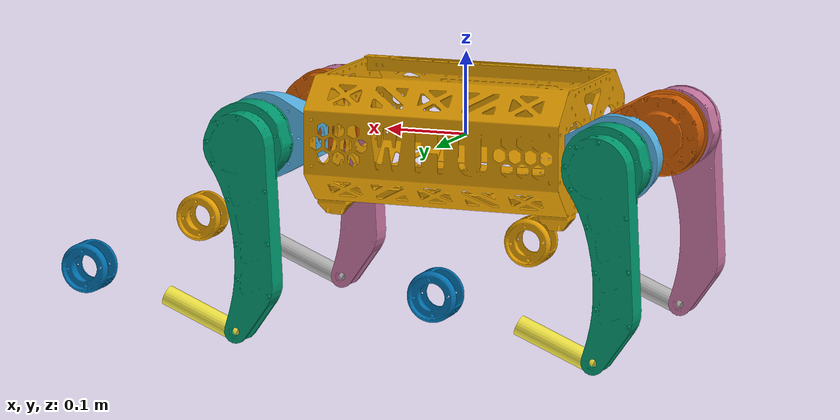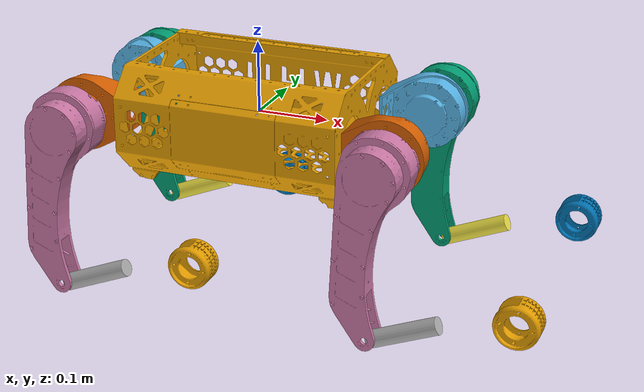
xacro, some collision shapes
<?xml version="1.0"?>
<robot name="Imgo2" xmlns:xacro="http://www.ros.org/wiki/xacro">

    <xacro:arg name="transmission" default="false"/>
    <xacro:arg name="gazebo" default="false"/>
    <xacro:arg name="imu" default="false"/>

    <!-- 内核：物理参数唯一准绳 -->
    <!-- 网格前缀：纯 URDF 用相对路径 ../meshes/（相对 urdf/ 目录）；Gazebo 组装改用
         package://imgo2_description/meshes/ —— Gazebo 经 ament 解析，这样即使 spawn 时
         只把 URDF 文本发过去（-topic）也能找到网格，不依赖文件所在目录。 -->
    <xacro:if value="$(arg gazebo)">
        <xacro:property name="mesh_prefix" value="package://imgo2_description/meshes/"/>
    </xacro:if>
    <xacro:unless value="$(arg gazebo)">
        <xacro:property name="mesh_prefix" value="../meshes/"/>
    </xacro:unless>

    <xacro:include filename="core.xacro"/>

    <xacro:if value="$(arg transmission)">
        <xacro:include filename="transmission.xacro"/>
        <xacro:leg_transmission prefix="FL"/>
        <xacro:leg_transmission prefix="FR"/>
        <xacro:leg_transmission prefix="RL"/>
        <xacro:leg_transmission prefix="RR"/>
    </xacro:if>

    <xacro:if value="$(arg gazebo)">
        <xacro:include filename="gazebo.xacro"/>
    </xacro:if>

    <xacro:if value="$(arg imu)">
        <xacro:include filename="imu.xacro"/>
        <xacro:IMU connected_to="base" imu_name="base_imu" xyz="0 0 0" rpy="0 0 0"/>
    </xacro:if>

</robot>

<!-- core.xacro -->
<robot xmlns:xacro="http://www.ros.org/wiki/xacro">
<link name="base">
        <inertial>
            <origin rpy="0 0 0" xyz="-0.00002223 -0.00136579 0.00287896"/>
            <mass value="5.53394020"/>
            <inertia ixx="0.03866860" ixy="0.00001502" ixz="0.00000229"
                    iyy="0.10411461" iyz="-0.00009602"
                    izz="0.12554111"/>
        </inertial>
        <visual>
            <origin rpy="0 0 0" xyz="0 0 0.0"/>
            <geometry>
                <mesh filename="${mesh_prefix}base.STL"/>
            </geometry>
        </visual>
        <collision>
            <origin rpy="0 0 0" xyz="0 0 0"/>
            <geometry>
                <box size="0.315 0.243 0.147"/>
            </geometry>
        </collision>
        <collision>
            <origin rpy="0 0 0" xyz="0.136 0.07 -0.08325"/>
            <geometry>
                <box size="0.018 0.012 0.018"/>
            </geometry>
        </collision>
        <collision>
            <origin rpy="0 0 0" xyz="0.136 -0.07 -0.08325"/>
            <geometry>
                <box size="0.018 0.012 0.018"/>
            </geometry>
        </collision>
        <collision>
            <origin rpy="0 0 0" xyz="-0.136 0.07 -0.08325"/>
            <geometry>
                <box size="0.018 0.012 0.018"/>
            </geometry>
        </collision>
        <collision>
            <origin rpy="0 0 0" xyz="-0.136 -0.07 -0.08325"/>
            <geometry>
                <box size="0.018 0.012 0.018"/>
            </geometry>
        </collision>
    </link>
    <!-- FL FR RL RR -->
    <!--!!!!!!!!!!!! Front Left Leg !!!!!!!!!!!!!!!!!!!!!!!!!!!!!!!!!!!!-->
    <link name="FL_HIP">
        <inertial>
            <origin xyz="0.05776150 0.01631658 0.00001927"/>
            <mass value="0.66982842"/>
            <inertia ixx="0.00047165" ixy="-0.00002152" ixz="-0.00000604"
                    iyy="0.00094023" iyz="0.00000025"
                    izz="0.00063679"/>
        </inertial>
        <visual>
            <geometry>
                <mesh filename="${mesh_prefix}FL_hip.STL" scale="1 1 1"/>
            </geometry>
        </visual>
        <collision>
            <origin rpy="1.5707963267948966 0.0 0.0" xyz="0.063 0.013 0.0"/>
            <geometry>
                <cylinder length="0.041" radius="0.048"/>
            </geometry>
        </collision>
    </link>

    <joint name="FL_hip_joint" type="revolute">
        <origin xyz="0.1575 0.067 0.00025"/>
        <parent link="base"/>
        <child link="FL_HIP"/>
        <axis xyz="1 0 0"/>
        <limit lower="-0.523" upper="0.523" effort="23.7" velocity="30.1"/>
    </joint>

    <link name="FL_THIGH">
        <inertial>
            <origin rpy="0.0 0.0 0.0" xyz="-0.00429543 0.04392351 -0.03236426"/>
            <mass value="0.96995719"/>
            <inertia ixx="0.00506421" ixy="0.00008162" ixz="-0.00034748"
                    iyy="0.00527087" iyz="0.00062882"
                    izz="0.00088197"/>
        </inertial>
        <visual>
            <geometry>
                <mesh filename="${mesh_prefix}L_thigh.STL"/>
            </geometry>
        </visual>
        <collision>
            <origin rpy="1.5707963267948966 0.0 0.0" xyz="0.0 0.0235 0.0"/>
            <geometry>
                <cylinder length="0.046" radius="0.048"/>
            </geometry>
        </collision>
        <collision>
            <origin rpy="0.0 0.137 0.0" xyz="-0.012 0.0637 -0.08"/>
            <geometry>
                <box size="0.06 0.032 0.22"/>
            </geometry>
        </collision>
    </link>
    <joint name="FL_thigh_joint" type="revolute">
        <origin xyz="0.063 0.0346 0"/>
        <parent link="FL_HIP"/>
        <child link="FL_THIGH"/>
        <axis xyz="0 1 0"/>
        <limit lower="-0.9" upper="2.87" effort="23.7" velocity="30.1"/>
    </joint>

    <link name="FL_SHANK">
        <inertial>
            <origin rpy="0.0 0.0 0.0" xyz="0.00291507 0.00773582 -0.08768836"/>
            <mass value="0.09561741"/>
            <inertia ixx="0.00054414" ixy="0.00000025" ixz="0.00000058"
                    iyy="0.00055144" iyz="0.00000263"
                    izz="0.00001064"/>
        </inertial>
        <visual>
            <geometry>
                <mesh filename="${mesh_prefix}L_shank.STL"/>
            </geometry>
        </visual>
        <collision>
            <origin rpy="0.0 -0.1 0.0" xyz="0.0 0.008 -0.05"/>
            <geometry>
                <cylinder length="0.1" radius="0.012"/>
            </geometry>
        </collision>
        <collision>
            <origin rpy="0.0 0.1 0.0" xyz="0.005 0.008 -0.14"/>
            <geometry>
                <cylinder length="0.08" radius="0.012"/>
            </geometry>
        </collision>
    </link>

    <joint name="FL_shank_joint" type="revolute">
        <origin xyz="0 0.0557 -0.22"/>
        <parent link="FL_THIGH"/>
        <child link="FL_SHANK"/>
        <axis xyz="0 1 0"/>
        <limit lower="-3.0" upper="-0.733" effort="23.7" velocity="30.1"/>
    </joint>

    <link name="FL_FOOT">
        <inertial>
            <origin rpy="0.0 0.0 0.0" xyz="-0.00797137 0.00353495 -0.02130484"/>
            <mass value="0.056"/>
            <inertia ixx="9.6e-06" ixy="0" ixz="0" iyy="9.6e-06" iyz="0" izz="9.6e-06" />
        </inertial>
        <visual>
            <geometry>
                <mesh filename="${mesh_prefix}foot.STL"/>
            </geometry>
        </visual>
        <collision>
            <origin rpy="0.0 0.0 0.0" xyz="-0.008 0.0035 0.01"/>
            <geometry>
                <cylinder length="0.01" radius="0.0155"/>
            </geometry>
        </collision>
        <collision>
            <origin rpy="0.0 0.0 0.0" xyz="-0.008 0.0035 -0.02"/>
            <geometry>
                <sphere radius="0.022" />
            </geometry>
        </collision>
    </link>

    <joint name="FL_Ankle" type="fixed" dont_collapse="true">
        <parent link="FL_SHANK"/>
        <child link="FL_FOOT"/>
        <origin rpy="0.0 0.777 0.0" xyz="0.0 0.00455 -0.206"/>
    </joint>

    <!--!!!!!!!!!!!! Front Right Leg !!!!!!!!!!!!!!!!!!!!!!!!!!!!!!!!!!!!-->
    <link name="FR_HIP">
        <inertial>
            <origin xyz="0.05776150 -0.01631658 0.00001927"/>
            <mass value="0.66982842"/>
            <inertia ixx="0.00047165" ixy="0.00002152" ixz="-0.00000604"
                    iyy="0.00094023" iyz="-0.00000025"
                    izz="0.00063679"/>
        </inertial>
        <visual>
            <geometry>
                <mesh filename="${mesh_prefix}FR_hip.STL" scale="1 1 1"/>
            </geometry>
        </visual>
        <collision>
            <origin rpy="1.5707963267948966 0.0 0.0" xyz="0.063 -0.013 0.0"/>
            <geometry>
                <cylinder length="0.041" radius="0.048"/>
            </geometry>
        </collision>
    </link>

    <joint name="FR_hip_joint" type="revolute">
        <origin xyz="0.1575 -0.067 0.00025"/>
        <parent link="base"/>
        <child link="FR_HIP"/>
        <axis xyz="1 0 0"/>
        <limit lower="-0.523" upper="0.523" effort="23.7" velocity="30.1"/>
    </joint>

    <link name="FR_THIGH">
        <inertial>
            <origin rpy="0.0 0.0 0.0" xyz="-0.00429543 -0.04392351 -0.03236426"/>
            <mass value="0.96995719"/>
            <inertia ixx="0.00506421" ixy="-0.00008162" ixz="-0.00034748"
                    iyy="0.00527087" iyz="-0.00062882"
                    izz="0.00088197"/>
        </inertial>
        <visual>
            <geometry>
                <mesh filename="${mesh_prefix}R_thigh.STL"/>
            </geometry>
        </visual>
        <collision>
            <origin rpy="1.5707963267948966 0.0 0.0" xyz="0.0 -0.0235 0.0"/>
            <geometry>
                <cylinder length="0.046" radius="0.048"/>
            </geometry>
        </collision>
        <collision>
            <origin rpy="0.0 0.137 0.0" xyz="-0.012 -0.0637 -0.08"/>
            <geometry>
                <box size="0.06 0.032 0.22"/>
            </geometry>
        </collision>
    </link>
    <joint name="FR_thigh_joint" type="revolute">
        <origin xyz="0.063 -0.0346 0"/>
        <parent link="FR_HIP"/>
        <child link="FR_THIGH"/>
        <axis xyz="0 1 0"/>
        <limit lower="-0.9" upper="2.87" effort="23.7" velocity="30.1"/>
    </joint>

    <link name="FR_SHANK">
        <inertial>
            <origin rpy="0.0 0.0 0.0" xyz="0.00291507 -0.00773582 -0.08768836"/>
            <mass value="0.09561741"/>
            <inertia ixx="0.00054414" ixy="-0.00000025" ixz="0.00000058"
                    iyy="0.00055144" iyz="-0.00000263"
                    izz="0.00001064"/>
        </inertial>
        <visual>
            <geometry>
                <mesh filename="${mesh_prefix}R_shank.STL"/>
            </geometry>
        </visual>
        <collision>
            <origin rpy="0.0 -0.1 0.0" xyz="0.0 -0.008 -0.05"/>
            <geometry>
                <cylinder length="0.1" radius="0.012"/>
            </geometry>
        </collision>
        <collision>
            <origin rpy="0.0 0.1 0.0" xyz="0.005 -0.008 -0.14"/>
            <geometry>
                <cylinder length="0.08" radius="0.012"/>
            </geometry>
        </collision>
    </link>

    <joint name="FR_shank_joint" type="revolute">
        <origin xyz="0 -0.0557 -0.22"/>
        <parent link="FR_THIGH"/>
        <child link="FR_SHANK"/>
        <axis xyz="0 1 0"/>
        <limit lower="-3.0" upper="-0.733" effort="23.7" velocity="30.1"/>
    </joint>

    <link name="FR_FOOT">
        <inertial>
            <origin rpy="0.0 0.0 0.0" xyz="-0.00797137 0.00353495 -0.02130484"/>
            <mass value="0.056"/>
            <inertia ixx="9.6e-06" ixy="0" ixz="0" iyy="9.6e-06" iyz="0" izz="9.6e-06" />
        </inertial>
        <visual>
            <geometry>
                <mesh filename="${mesh_prefix}foot.STL"/>
            </geometry>
        </visual>
        <collision>
            <origin rpy="0.0 0.0 0.0" xyz="-0.008 -0.0035 0.01"/>
            <geometry>
                <cylinder length="0.01" radius="0.0155"/>
            </geometry>
        </collision>
        <collision>
            <origin rpy="0.0 0.0 0.0" xyz="-0.008 -0.0035 -0.02"/>
            <geometry>
                <sphere radius="0.022" />
            </geometry>
        </collision>
    </link>

    <joint name="FR_Ankle" type="fixed" dont_collapse="true">
        <parent link="FR_SHANK"/>
        <child link="FR_FOOT"/>
        <origin rpy="0.0 0.777 0.0" xyz="0.0 -0.01145 -0.206"/>
    </joint>

    <!--!!!!!!!!!!!! Back Left Leg !!!!!!!!!!!!!!!!!!!!!!!!!!!!!!!!!!!!-->
     <link name="RL_HIP">
        <inertial>
            <origin xyz="-0.05776150 0.01631658 0.00001927"/>
            <mass value="0.66982842"/>
            <inertia ixx="0.00047165" ixy="0.00002152" ixz="0.00000604"
                    iyy="0.00094023" iyz="0.00000025"
                    izz="0.00063679"/>
        </inertial>
        <visual>
            <geometry>
                <mesh filename="${mesh_prefix}RL_hip.STL" scale="1 1 1"/>
            </geometry>
        </visual>
        <collision>
            <origin rpy="1.5707963267948966 0.0 0.0" xyz="-0.063 0.013 0.0"/>
            <geometry>
                <cylinder length="0.041" radius="0.048"/>
            </geometry>
        </collision>
    </link>

    <joint name="RL_hip_joint" type="revolute">
        <origin xyz="-0.1575 0.067 0.00025"/>
        <parent link="base"/>
        <child link="RL_HIP"/>
        <axis xyz="1 0 0"/>
        <limit lower="-0.523" upper="0.523" effort="23.7" velocity="30.1"/>
    </joint>

    <link name="RL_THIGH">
        <inertial>
            <origin rpy="0.0 0.0 0.0" xyz="0.00429543 0.04392351 -0.03236426"/>
            <mass value="0.96995719"/>
            <inertia ixx="0.00506421" ixy="0.00008162" ixz="-0.00034748"
                    iyy="0.00527087" iyz="0.00062882"
                    izz="0.00088197"/>
        </inertial>
        <visual>
            <geometry>
                <mesh filename="${mesh_prefix}L_thigh.STL"/>
            </geometry>
        </visual>
        <collision>
            <origin rpy="1.5707963267948966 0.0 0.0" xyz="0.0 0.0235 0.0"/>
            <geometry>
                <cylinder length="0.046" radius="0.048"/>
            </geometry>
        </collision>
        <collision>
            <origin rpy="0.0 0.137 0.0" xyz="-0.012 0.0637 -0.08"/>
            <geometry>
                <box size="0.06 0.032 0.22"/>
            </geometry>
        </collision>
    </link>
    <joint name="RL_thigh_joint" type="revolute">
        <origin xyz="-0.063 0.0346 0"/>
        <parent link="RL_HIP"/>
        <child link="RL_THIGH"/>
        <axis xyz="0 1 0"/>
        <limit lower="-0.9" upper="2.87" effort="23.7" velocity="30.1"/>
    </joint>

    <link name="RL_SHANK">
        <inertial>
            <origin rpy="0.0 0.0 0.0" xyz="0.00291507 0.00773582 -0.08768836"/>
            <mass value="0.09561741"/>
            <inertia ixx="0.00054414" ixy="0.00000025" ixz="0.00000058"
                    iyy="0.00055144" iyz="0.00000263"
                    izz="0.00001064"/>
        </inertial>
        <visual>
            <geometry>
                <mesh filename="${mesh_prefix}L_shank.STL"/>
            </geometry>
        </visual>
        <collision>
            <origin rpy="0.0 -0.1 0.0" xyz="0.0 0.008 -0.05"/>
            <geometry>
                <cylinder length="0.1" radius="0.012"/>
            </geometry>
        </collision>
        <collision>
            <origin rpy="0.0 0.1 0.0" xyz="0.005 0.008 -0.14"/>
            <geometry>
                <cylinder length="0.08" radius="0.012"/>
            </geometry>
        </collision>
    </link>

    <joint name="RL_shank_joint" type="revolute">
        <origin xyz="0 0.0557 -0.22"/>
        <parent link="RL_THIGH"/>
        <child link="RL_SHANK"/>
        <axis xyz="0 1 0"/>
        <limit lower="-3.0" upper="-0.733" effort="23.7" velocity="30.1"/>
    </joint>

    <link name="RL_FOOT">
        <inertial>
            <origin rpy="0.0 0.0 0.0" xyz="-0.00797137 0.00353495 -0.02130484"/>
            <mass value="0.056"/>
            <inertia ixx="9.6e-06" ixy="0" ixz="0" iyy="9.6e-06" iyz="0" izz="9.6e-06" />
        </inertial>
        <visual>
            <geometry>
                <mesh filename="${mesh_prefix}foot.STL"/>
            </geometry>
        </visual>
        <collision>
            <origin rpy="0.0 0.0 0.0" xyz="-0.008 0.0035 0.01"/>
            <geometry>
                <cylinder length="0.01" radius="0.0155"/>
            </geometry>
        </collision>
        <collision>
            <origin rpy="0.0 0.0 0.0" xyz="-0.008 0.0035 -0.02"/>
            <geometry>
                <sphere radius="0.022" />
            </geometry>
        </collision>
    </link>

    <joint name="RL_Ankle" type="fixed" dont_collapse="true">
        <parent link="RL_SHANK"/>
        <child link="RL_FOOT"/>
        <origin rpy="0.0 0.777 0.0" xyz="0.0 0.00455 -0.206"/>
    </joint>

    <!--!!!!!!!!!!!! Back Right Leg !!!!!!!!!!!!!!!!!!!!!!!!!!!!!!!!!!!!-->
    <link name="RR_HIP">
        <inertial>
            <origin xyz="-0.05776150 -0.01631658 0.00001927"/>
            <mass value="0.66982842"/>
            <inertia ixx="0.00047165" ixy="-0.00002152" ixz="0.00000604"
                    iyy="0.00094023" iyz="-0.00000025"
                    izz="0.00063679"/>
        </inertial>
        <visual>
            <geometry>
                <mesh filename="${mesh_prefix}RR_hip.STL" scale="1 1 1"/>
            </geometry>
        </visual>
        <collision>
            <origin rpy="1.5707963267948966 0.0 0.0" xyz="-0.063 -0.013 0.0"/>
            <geometry>
                <cylinder length="0.041" radius="0.048"/>
            </geometry>
        </collision>
    </link>

    <joint name="RR_hip_joint" type="revolute">
        <origin xyz="-0.1575 -0.067 0.00025"/>
        <parent link="base"/>
        <child link="RR_HIP"/>
        <axis xyz="1 0 0"/>
        <limit lower="-0.523" upper="0.523" effort="23.7" velocity="30.1"/>
    </joint>

    <link name="RR_THIGH">
        <inertial>
            <origin rpy="0.0 0.0 0.0" xyz="0.00429543 -0.04392351 -0.03236426"/>
            <mass value="0.96995719"/>
            <inertia ixx="0.00506421" ixy="-0.00008162" ixz="-0.00034748"
                    iyy="0.00527087" iyz="-0.00062882"
                    izz="0.00088197"/>
        </inertial>
        <visual>
            <geometry>
                <mesh filename="${mesh_prefix}R_thigh.STL"/>
            </geometry>
        </visual>
        <collision>
            <origin rpy="1.5707963267948966 0.0 0.0" xyz="0.0 -0.0235 0.0"/>
            <geometry>
                <cylinder length="0.046" radius="0.048"/>
            </geometry>
        </collision>
        <collision>
            <origin rpy="0.0 0.137 0.0" xyz="-0.012 -0.0637 -0.08"/>
            <geometry>
                <box size="0.06 0.032 0.22"/>
            </geometry>
        </collision>
    </link>
    <joint name="RR_thigh_joint" type="revolute">
        <origin xyz="-0.063 -0.0346 0"/>
        <parent link="RR_HIP"/>
        <child link="RR_THIGH"/>
        <axis xyz="0 1 0"/>
        <limit lower="-0.9" upper="2.87" effort="23.7" velocity="30.1"/>
    </joint>

    <link name="RR_SHANK">
        <inertial>
            <origin rpy="0.0 0.0 0.0" xyz="0.00291507 -0.00773582 -0.08768836"/>
            <mass value="0.09561741"/>
            <inertia ixx="0.00054414" ixy="-0.00000025" ixz="0.00000058"
                    iyy="0.00055144" iyz="-0.00000263"
                    izz="0.00001064"/>
        </inertial>
        <visual>
            <geometry>
                <mesh filename="${mesh_prefix}R_shank.STL"/>
            </geometry>
        </visual>
        <collision>
            <origin rpy="0.0 -0.1 0.0" xyz="0.0 -0.008 -0.05"/>
            <geometry>
                <cylinder length="0.1" radius="0.012"/>
            </geometry>
        </collision>
        <collision>
            <origin rpy="0.0 0.1 0.0" xyz="0.005 -0.008 -0.14"/>
            <geometry>
                <cylinder length="0.08" radius="0.012"/>
            </geometry>
        </collision>
    </link>

    <joint name="RR_shank_joint" type="revolute">
        <origin xyz="0 -0.0557 -0.22"/>
        <parent link="RR_THIGH"/>
        <child link="RR_SHANK"/>
        <axis xyz="0 1 0"/>
        <limit lower="-3.0" upper="-0.733" effort="23.7" velocity="30.1"/>
    </joint>

    <link name="RR_FOOT">
        <inertial>
            <origin rpy="0.0 0.0 0.0" xyz="-0.00797137 0.00353495 -0.02130484"/>
            <mass value="0.056"/>
            <inertia ixx="9.6e-06" ixy="0" ixz="0" iyy="9.6e-06" iyz="0" izz="9.6e-06" />
        </inertial>
        <visual>
            <geometry>
                <mesh filename="${mesh_prefix}foot.STL"/>
            </geometry>
        </visual>
        <collision>
            <origin rpy="0.0 0.0 0.0" xyz="-0.008 -0.0035 0.01"/>
            <geometry>
                <cylinder length="0.01" radius="0.0155"/>
            </geometry>
        </collision>
        <collision>
            <origin rpy="0.0 0.0 0.0" xyz="-0.008 -0.0035 -0.02"/>
            <geometry>
                <sphere radius="0.022" />
            </geometry>
        </collision>
    </link>

    <joint name="RR_Ankle" type="fixed" dont_collapse="true">
        <parent link="RR_SHANK"/>
        <child link="RR_FOOT"/>
        <origin rpy="0.0 0.777 0.0" xyz="0.0 -0.01145 -0.206"/>
    </joint>
</robot>
